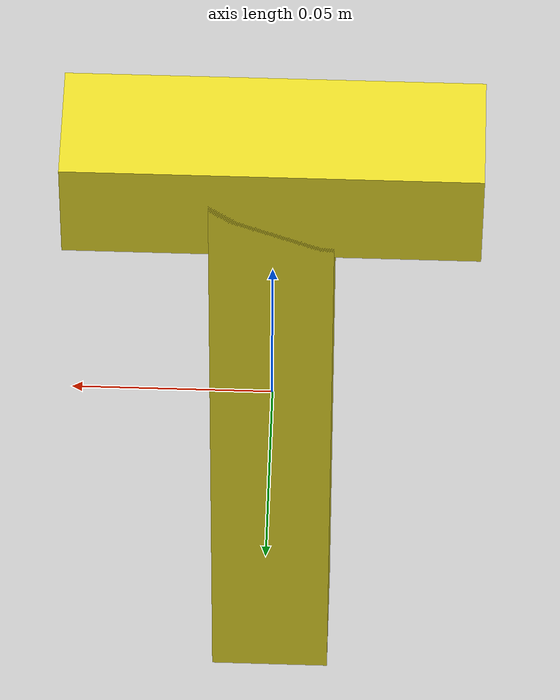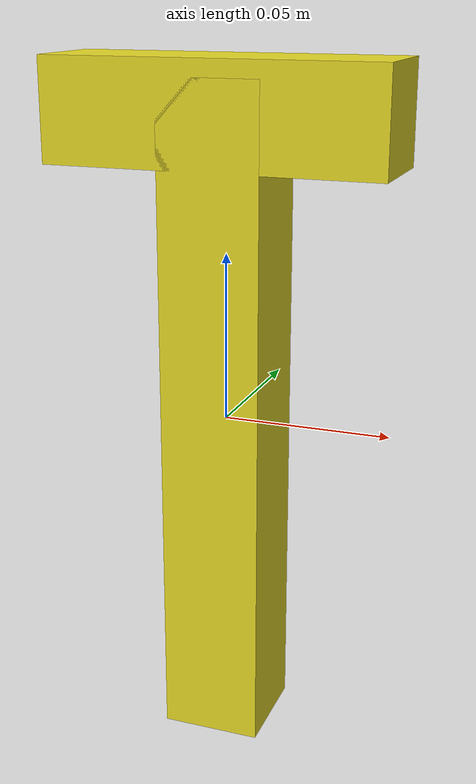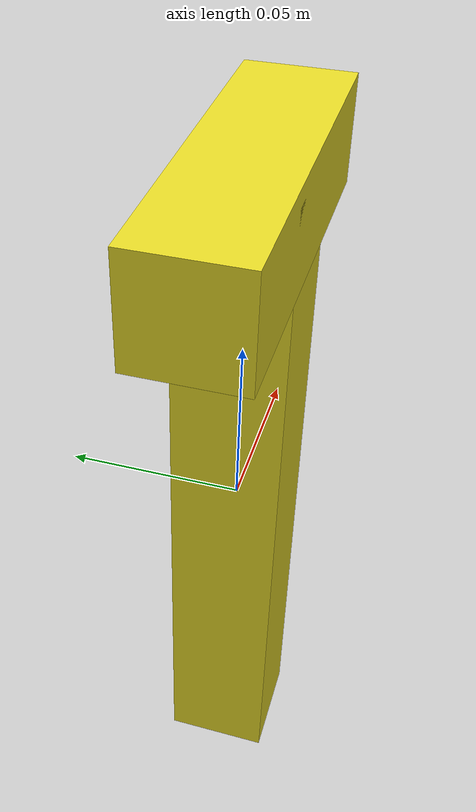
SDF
<?xml version='1.0'?>
<sdf version='1.6'>
<model name='t_object'>

	<static>false</static>
	<link name="link0">
		<inertial>
			<mass>0.08</mass>
			<inertia>
				<ixx>2.1248e-04</ixx>
				<ixy>0.0</ixy>
				<ixz>0.0</ixz>
				<iyy>1.3149e-04</iyy>
				<iyz>0.0</iyz>
				<izz>1.3149e-04</izz>
			</inertia>
		</inertial>
		<collision name="collision">
		<pose frame=''>0 0 0.09 0 -0 0</pose>
			<geometry>
				<box>
					<size>0.1 0.03 0.03</size>
				</box>
			</geometry>
		<surface>
			    <contact>
					<ode>
						<soft_cfm>0.2</soft_cfm>
						<soft_erp>0.2</soft_erp>
						<kp>1e5</kp>
						<kd>1.0</kd>
					</ode>
				</contact>

				<friction>
					<ode>
						<mu>1e10</mu>
						<mu2>1e10</mu2>
	    				<fdir1>0.000000 0.000000 1.000000</fdir1>
					</ode>
				</friction>
				<contact>
					<ode>
						<max_vel>0</max_vel>
						<min_depth>0.001</min_depth>
					</ode>
				</contact>
			</surface>
		</collision>
			<visual name="visual">
				<pose frame=''>0 0 0.09 0 -0 0</pose>
				<geometry>
					<box>
						<size>0.1 0.03 0.03</size>
					</box>
				</geometry>
        <material>
          <lighting>1</lighting>
          <script>
            <uri>file://media/materials/scripts/gazebo.material</uri>
            <name>Gazebo/Yellow</name>
          </script>
        </material>
				</visual>
			</link>

			<static>false</static>
			<link name="link1">
				<inertial>
					<mass>0.08</mass>
					<inertia>
						<ixx>2.1248e-04</ixx>
						<ixy>0.0</ixy>
						<ixz>0.0</ixz>
						<iyy>1.3149e-04</iyy>
						<iyz>0.0</iyz>
						<izz>1.3149e-04</izz>
					</inertia>
				</inertial>
				<collision name="collision">
					<geometry>
						<box>
							<size> 0.03 0.03 0.2</size>
						</box>
					</geometry>
					<surface>
						<contact>
							<ode>
								<soft_cfm>0.2</soft_cfm>
								<soft_erp>0.2</soft_erp>
								<kp>1e5</kp>
								<kd>1.0</kd>
							</ode>
						</contact>

						<friction>
							<ode>
								<mu>1e10</mu>
								<mu2>1e10</mu2>
								<fdir1>0.000000 0.000000 1.000000</fdir1>
							</ode>
						</friction>
						<contact>
							<ode>
								<max_vel>0</max_vel>
								<min_depth>0.001</min_depth>
							</ode>
						</contact>
					</surface>
				</collision>
				<visual name="visual">
					<geometry>
						<box>
							<size> 0.03 0.03 0.2</size>
						</box>
					</geometry>
        <material>
          <lighting>1</lighting>
          <script>
            <uri>file://media/materials/scripts/gazebo.material</uri>
            <name>Gazebo/Yellow</name>
          </script>
        </material>
				</visual>
			</link>

     <joint name='link0-link1-JOINT_0' type='fixed'>
      <parent>link0</parent>
      <child>link1</child>
      <pose frame=''>0 0 0 0 0 0</pose>
    </joint>

    <static>0</static>
    <allow_auto_disable>1</allow_auto_disable>
		</model>
</sdf>
